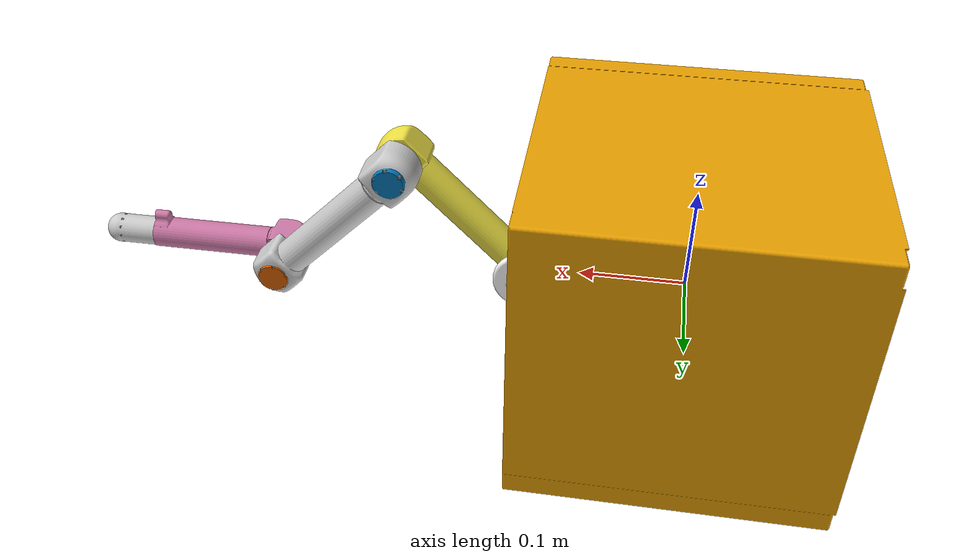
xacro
<?xml version="1.0"?>
<robot xmlns:xacro="http://ros.org/wiki/xacro" name="chaser">
	<xacro:include filename="$(find chaser_description)/urdf/chaser.urdf.base.xacro"/>
	<xacro:include filename="$(find chaser_description)/urdf/chaser.urdf.links.xacro"/>
	<xacro:include filename="$(find chaser_description)/urdf/chaser.urdf.joints.xacro"/>
	<xacro:include filename="$(find chaser_description)/urdf/chaser.urdf.camera.xacro"/>
	<xacro:include filename="$(find chaser_description)/urdf/chaser.gazebo.xacro"/>

	<xacro:arg name="standalone_c" default="true"/>
	<xacro:arg name="joystick_c" default="true"/>
	<xacro:arg name="simple_" default="false"/>

 <xacro:base_create/>
 <xacro:arm_create/>
 <xacro:joints_create/>
 <xacro:camera_urdf radius_xy="0.001"  length_z="0.0005" posx="0.13550" posy="-0.02" posz="-0.018" rotx="1.5707963267949" roty="0" rotz="0" parent="arm3"/> <!--- posx="0.13717" roty="-1.571"-->

 <link	name="base_footprint"/>
  <!-- Attach the model to Gazebo-->
  <joint name="base_joint" type="fixed">
		<!--parent link="base_footprint"/-->
		<parent link="base_footprint"/>
		<child link="base_link"/> <!--base_footprint: still mobile world: fixed -->
  </joint>
  <xacro:integration_gazebo joystick_g="$(arg joystick_c)" standalone_g="$(arg standalone_c)" simple="$(arg simple_)"/>

</robot>

<!--parent link="world"/-->

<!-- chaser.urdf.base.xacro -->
<robot xmlns:xacro="http://ros.org/wiki/xacro">
	<xacro:property name="mesh_path" value="chaser_description/models/robot1.0/meshes"/>
	<xacro:macro name="base_create">
	<xacro:property name="scale" value="1"/>
	  <link
		name="base_link">
		<inertial>
		  <origin
			xyz="0 0 0"
			rpy="0 0 0" />
		  <mass
			value="255" />
		  <inertia
			ixx="3.87199388339"
			ixy="0"
			ixz="7.527E-07"
			iyy="3.81565926076"
			iyz="0"
			izz="3.81565926004" /> <!--ixx="3.872" ixz="7.527E-07" -->
		</inertial>
		<visual>
		  <geometry>
			<mesh
			  filename="package://${mesh_path}/base.dae" scale="${scale} ${scale} ${scale}"/>
		  </geometry>
		</visual>
		<collision>
		  <geometry>
			<mesh
			  filename="package://${mesh_path}/base_col.STL" scale="${scale} ${scale} ${scale}"/>
		  </geometry>
		</collision>
	  </link>
	</xacro:macro>
</robot>

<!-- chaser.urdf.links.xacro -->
<robot xmlns:xacro="http://ros.org/wiki/xacro">
	<xacro:property name="mesh_path" value="chaser_description/models/robot1.0/meshes"/>
	<xacro:macro name="arm_create" >
	<xacro:property name="scale" value="1"/>
	  <link
		name="arm0">
		<inertial>
		  <origin
			xyz="-0.0 ${-0.0099455*scale} ${0.031502*scale}"
			rpy="0 0 0" />
		  <mass
			value="2.188" />
		  <inertia
			ixx="0.0020655263"
			ixy="-1.03600944159698E-18"
			ixz="7.98425222551929E-19"
			iyy="0.0015236909"
			iyz="-0.000330738"
			izz="-0.0" />
		</inertial>
		<visual>
		  <geometry>
			<mesh
			  filename="package://${mesh_path}/arm0.dae" scale="${scale} ${scale} ${scale}"/>
		  </geometry>
		</visual>
		<collision>
		  <geometry>
			<mesh
			  filename="package://${mesh_path}/arm0_col.STL"/>
		  </geometry>
		</collision>
	  </link>

	  <link
		name="arm1">
		<inertial>
		  <origin
			xyz="-0.0 -0.0 -0.0"
			rpy="0 0 0" />
		  <mass
			value="0.684" />
		  <inertia
			ixx="0.0001629973"
			ixy="1.76783063254965E-07"
			ixz="3.44463435626053E-20"
			iyy="0.000161804"
			iyz="1.78234800433147E-20"
			izz="0.0001942075" />
		</inertial>
		<visual>
		  <geometry>
			<mesh
			  filename="package://${mesh_path}/arm1.dae" />
		  </geometry>
		</visual>
		<collision>
		  <geometry>
			<mesh
			  filename="package://${mesh_path}/arm1_col.STL"  scale="${scale} ${scale} ${scale}"/>
		  </geometry>
		</collision>
	  </link>

	  	<link
		name="arm1_1">
		<inertial>
		  <origin
			xyz="0 0 ${0.0940740*scale}"
			rpy="0 0 0" />
		  <mass
			value="1.403" />
		  <inertia
			ixx="0.0035182671"
			ixy="1.48956570040176E-08"
			ixz="-1.62260783077023E-06"
			iyy="0.0035143154"
			iyz="3.12588982516402E-05"
			izz="0.0002606412" />
		</inertial>
		<visual>
		  <geometry>
			<mesh
			  filename="package://${mesh_path}/arm1_1.dae" scale="${scale} ${scale} ${scale}" />
		  </geometry>
		</visual>
		<collision>
		  <geometry>
			<mesh
			  filename="package://${mesh_path}/arm1_1_col.STL" scale="${scale} ${scale} ${scale}" />
		  </geometry>
		</collision>
	  </link>

	  <link
		name="arm2">
		<inertial>
		  <origin
			xyz="${0.00145198*scale} 0 ${0.0190117*scale}"
			rpy="0 0 0" />
		  <mass
			value="0.684" />
		  <inertia
			ixx="0.000166649"
			ixy="0.000000151"
			ixz="-1.00480707572084E-06"
			iyy="0.0001656077"
			iyz="-4.93074869865452E-08"
			izz="0.0001872872" />
		</inertial>
		<visual>
		  <geometry>
			<mesh
			  filename="package://${mesh_path}/arm2.dae" scale="${scale} ${scale} ${scale}"/>
		  </geometry>
		</visual>
		<collision>
		  <geometry>
			<mesh
			  filename="package://${mesh_path}/arm2_col.STL" scale="${scale} ${scale} ${scale}"/>
		  </geometry>
		</collision>
	  </link>
	  <link
		name="arm2_1">
		<inertial>
		  <origin
			xyz="0.0 ${-0.000474807*scale} ${0.0940740*scale}"
			rpy="0 0 0" />
		  <mass
			value="1.403" />
		  <inertia
			ixx="0.0035162283"
			ixy="1.63775393312065E-08"
			ixz="1.62260783073914E-06"
			iyy="0.0035143154"
			iyz="-3.43686643307904E-05"
			izz="0.0002586024" />
		</inertial>
		<visual>
		  <geometry>
			<mesh
			  filename="package://${mesh_path}/arm2_1.dae" scale="${scale} ${scale} ${scale}"/>
		  </geometry>
		</visual>
		<collision>
		  <geometry>
			<mesh
			  filename="package://${mesh_path}/arm2_1_col.STL" scale="${scale} ${scale} ${scale}"/>
		  </geometry>
		</collision>
	  </link>
	  <link
		name="arm3">
		<inertial>
		  <origin
			xyz="${0.0449361*scale} ${-0.000259019*scale} ${-0.0185460*scale}"
			rpy="0 0 0" />
		  <mass
			value="1.3470380057" />
		  <inertia
			ixx="0.0001927432"
			ixy="-2.89797715428797E-05"
			ixz="3.30477933144638E-05"
			iyy="0.002441563"
			iyz="-1.90493140925181E-07"
			izz="0.0024412314" />
		</inertial>
		<visual>
		  <geometry>
			<mesh
			  filename="package://${mesh_path}/arm3.dae" scale="${scale} ${scale} ${scale}"/>
		  </geometry>
		</visual>
		<collision>
		  <geometry>
			<mesh
			  filename="package://${mesh_path}/arm3_col.STL" scale="${scale} ${scale} ${scale}"/>
		  </geometry>
		</collision>
	  </link>
	  <link
		name="hand">
		<inertial>
		  <origin
			xyz="-0.0 -0.0 ${0.0265827*scale}"
			rpy="0.0 0.0 0.0" />
		  <mass
			value="0.283" />
		  <inertia
			ixx="0.000072121"
			ixy="0"
			ixz="0"
			iyy="0.000072121"
			iyz="0"
			izz="0.000031537" />
		</inertial>
		<visual>
		  <geometry>
			<mesh
			  filename="package://${mesh_path}/hand.dae" scale="${scale} ${scale} ${scale}"/>
		  </geometry>
		</visual>
		<collision name="hand"> <!--it is necessary to name the collision to be able to use the contact sensor-->
		  <geometry>
			<mesh
			  filename="package://${mesh_path}/hand_col.STL" scale="${scale} ${scale} ${scale}"/>
		  </geometry>
		</collision>
	  </link>

	</xacro:macro>
</robot>

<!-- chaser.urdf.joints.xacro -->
<robot xmlns:xacro="http://ros.org/wiki/xacro">
	<xacro:include filename="$(find chaser_description)/urdf/chaser.urdf.joints.transmission.xacro"/>
	<xacro:property name="damp" value="0.0"/>
	<xacro:property name="frict" value="0.0"/>
	<xacro:property name="calibration_edge" value="0.0"/>
	<xacro:property name="k_vel" value="0"/>
	<xacro:property name="k_pos" value="0"/>
	<xacro:property name="effort_t" value="10000000.0"/> <!--for the matter of test 1e7-->
	<xacro:property name="vel_t" value="1000.0"/> <!--scaling factor for maximum velocity - for testing purposes-->
	<xacro:property name="soft_limit_r" value="1"/>
	<xacro:property name="motor_reduction" value="1"/>
	<xacro:property name="scale" value="1"/>

	<!--for the matter of test 1e7-->
	<!--xacro:property name="vel_t" value="1000.0"/--> <!--scaling factor for maximum velocity - for testing purposes-->

	<!--xacro:property name="up_lim_j1" value="6.1087"/--> <!--3.2289 symmetric-->
	<!--xacro:property name="lw_lim_j2" value="-0.69341"/-->
	<!--xacro:property name="up_lim_j2" value="2.3642"/-->
	<!--symmetric and equal to j5 -->
	<!--value="-0.032"-->

	<xacro:property name="up_lim_j1" value="6.1087"/> <!--3.2289 symmetric-->
	<xacro:property name="lw_lim_j2" value="-6.1087"/>
	<xacro:property name="up_lim_j2" value="6.1087"/>
	<xacro:property name="lw_lim_j4" value="-6.1087"/>
	<xacro:property name="up_lim_j4" value="6.1087"/>
	<xacro:property name="up_lim_j3" value="6.1087"/> <!--symmetric and equal to j5 -->
	<xacro:property name="lw_lim_j6" value="-6.1087"/>
	<xacro:property name="up_lim_j6" value="6.1087"/>
	<xacro:property name="stroke_d1" value="-0.032"/> <!--value="-0.032"-->

	<!-- Definition of variables -->

	<xacro:property name="deg2rad" value="${pi/180}" />

	<xacro:macro name="joints_create">
	 <joint
		name="j1"
		type="revolute"> <!--revolute-->
		<origin
		  xyz="${0.103238*scale} -0.0 -0.0"
		  rpy="-0.0 ${90*deg2rad} -0.0" />
		<parent
		  link="base_link" />
		<child
		  link="arm0" />
		<axis
		  xyz="0 0 1" />
		<limit
		  lower="-${up_lim_j1}"
		  upper="${up_lim_j1}"
		  effort="10"
		  velocity="${2.4435*vel_t}" />
		<!--calibration
			rising = "${calibration_edge}"/-->
		<dynamics
			damping="${damp}"
			friction="${frict}"/>
		<safety_controller
			k_velocity="${k_vel}"
			k_position="${k_pos}"
			soft_lower_limit="-${soft_limit_r* up_lim_j1}"
			soft_upper_limit="${soft_limit_r* up_lim_j1}" />    <!--origin xyz="0.10324 0 0"  rpy="0 1.5708 0" /-->
	  </joint>
	  <xacro:joint_trans name="j1" reduction="${motor_reduction}"/>

	  <joint
		name="j2"
		type="revolute">
		<origin
		  xyz="0.0 0.0 ${0.046700*scale}"
		  rpy="${90*deg2rad} ${-45*deg2rad} ${-180*deg2rad}" />
		<parent
		  link="arm0" />
		<child
		  link="arm1" />
		<axis xyz="0 0 1" />
		<limit
		  lower="${lw_lim_j2}"
		  upper="${up_lim_j2}"
		  effort="${effort_t}"
		  velocity="${2.1991*vel_t}" />
		<!--calibration
			rising = "${calibration_edge}"/-->
		<dynamics
			damping="${damp}"
			friction="${frict}"/>
		<safety_controller
			k_velocity="${k_vel}"
			k_position="${k_pos}"
			soft_lower_limit="${soft_limit_r* lw_lim_j2}"
			soft_upper_limit="${soft_limit_r* up_lim_j2}" />
	  </joint>
	  <xacro:joint_trans name="j2" reduction="${motor_reduction}"/>

	   <joint
		name="j3"
		type="revolute">
		<origin
		  xyz="${0.021000*scale} -0.0 -0.0"
		  rpy="${90*deg2rad} -0.0 ${90*deg2rad}" />
		<parent
		  link="arm1" />
		<child
		  link="arm1_1" />
		<axis  xyz="0 0 1" />
		<limit
		  lower="-${up_lim_j3}"
		  upper="${up_lim_j3}"
		  effort="${effort_t}"
		  velocity="${4.5379*vel_t}"/> <!--symmetric-->
		<!--calibration
			rising = "${calibration_edge}"/-->
		<dynamics
			damping="${damp}"
			friction="${frict}"/>
		<safety_controller
			k_velocity="${k_vel}"
			k_position="${k_pos}"
			soft_lower_limit="-${soft_limit_r*up_lim_j3}"
			soft_upper_limit="${soft_limit_r*up_lim_j3}" />  <!--symmetric-->
	  </joint>
	  <xacro:joint_trans name="j3" reduction="${motor_reduction}"/>

	  <joint
		name="j4"
		type="revolute">
	   <origin
		  xyz="-0.0 ${0.021000*scale} ${0.145667*scale}"
		  rpy="${-90*deg2rad} -0.0 -0.0" />
		<parent
		  link="arm1_1" />
		<child
		  link="arm2" />
		<axis
		  xyz="0 0 1" />
		<limit
		  lower="${lw_lim_j4}"
		  upper="${up_lim_j4}"
		  effort="${effort_t}"
		  velocity="${2.1991*vel_t}" />
		<!--calibration
			rising = "${calibration_edge}"/-->
		<dynamics
			damping="${damp}"
			friction="${frict}"/>
		<safety_controller
			k_velocity="${k_vel}"
			k_position="${k_pos}"
			soft_lower_limit="${soft_limit_r* lw_lim_j4}"
			soft_upper_limit="${soft_limit_r* up_lim_j4}" />
	  </joint>
	  <xacro:joint_trans name="j4" reduction="${motor_reduction}"/>

	  <joint
		name="j5"
		type="revolute">
		<origin
		  xyz="${0.021000*scale} -0.0 ${0.018000*scale}"
		  rpy="${90*deg2rad} -0.0 ${90*deg2rad}" />
		<parent
		  link="arm2" />
		<child
		  link="arm2_1" />
		<axis
		  xyz="0 0 1" />
		<limit
		  lower="-${up_lim_j3}"
		  upper="${up_lim_j3}"
		  effort="${effort_t}"
		  velocity="${4.5379*vel_t}"/> <!--symmetric-->
		<!--calibration
			rising = "${calibration_edge}"/-->
		<dynamics
			damping="${damp}"
			friction="${frict}"/>
		<safety_controller
			k_velocity="${k_vel}"
			k_position="${k_pos}"
			soft_lower_limit="-${soft_limit_r*up_lim_j3}"
			soft_upper_limit="${soft_limit_r*up_lim_j3}" />  <!--symmetric-->
	  </joint>
	  <xacro:joint_trans name="j5" reduction="${motor_reduction}"/>

	  <joint
		name="j6"
		type="revolute">
		<origin
		  xyz="0 ${-0.021000*scale} ${0.145667*scale}"
		  rpy="${90*deg2rad} ${-45*deg2rad} ${-180*deg2rad}" />
		<parent
		  link="arm2_1" />
		<child
		  link="arm3" />
		<axis
		  xyz="0 0 1" />
		<limit
		  lower="${lw_lim_j6}"
		  upper="${up_lim_j6}"
		  effort="${effort_t}"
		  velocity="${4.2761*vel_t}" />
		<!--calibration
			rising = "${calibration_edge}"/-->
		<dynamics
			damping="${damp}"
			friction="${frict}"/>
		<safety_controller
			k_velocity="${k_vel}"
			k_position="${k_pos}"
			soft_lower_limit="${soft_limit_r* lw_lim_j6}"
			soft_upper_limit="${soft_limit_r* up_lim_j6}" />
	  </joint>
	  <xacro:joint_trans name="j6" reduction="${motor_reduction}"/>

	  <joint
		name="d1"
		type="prismatic">
		<origin
		  xyz="${0.137170*scale} -0.0 ${-0.018*scale}"
		  rpy="${90*deg2rad} -0.0 ${90*deg2rad}" /> <!-- xyz="0 0 0.12"   w.ft.sensor. "0 0 0.145"-->
		<parent
		  link="arm3" />
		<child
		  link="hand" />
		<axis
		  xyz="0 0 1" />
		<limit
		  lower="${stroke_d1}"
		  upper="0.00"
		  effort="${effort_t}"
		  velocity="${2.5*vel_t}" /><!--${stroke_d1}-->
		<!--dynamics are implemented implemented in a plugin-->
	  </joint>
	  <xacro:joint_trans name="d1" reduction="${motor_reduction}"/> <!--dummy effort joint interface-->

	</xacro:macro>
</robot>

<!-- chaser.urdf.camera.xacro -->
<robot xmlns:xacro="http://ros.org/wiki/xacro">

	<xacro:macro name="camera_urdf" params="radius_xy length_z posx posy posz rotx roty rotz parent">
		<joint name="camera_joint" type="fixed">
			<axis xyz="0 1 0" />
			<origin xyz="${posx} ${posy} ${posz}" rpy="${rotx} ${roty} ${rotz}"/>
			<parent link="${parent}"/>
			<child link="camera_link"/>
		</joint>

		<link name="camera_link">
			<collision name="camera_link_collision">
				<origin xyz="0 0 0" rpy="0 ${rotx} 0"/>
				<geometry>
					<cylinder radius="${radius_xy}" length="${length_z}"/>
				</geometry>
			</collision>
			<visual name="camera_link_visual">
				<origin xyz="0 0 0" rpy="0 ${rotx} 0"/>
				<geometry>
					<cylinder radius="${radius_xy}" length="${length_z}"/>
				</geometry>
			</visual>

			<inertial>
				<mass value="1e-5" />
				<origin xyz="0 0 0" rpy="0 0 0"/>
				<inertia
					ixx="1e-6"
					ixy="0"
					ixz="0"
					iyy="1e-6"
					iyz="0"
					izz="1e-6"/>
			</inertial>
		</link>
	</xacro:macro>
</robot>

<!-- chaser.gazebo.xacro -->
<robot xmlns:xacro="http://ros.org/wiki/xacro">

	<!--LOAD MACROS XACROS-->
	<xacro:include filename="$(find chaser_description)/urdf/chaser.gazebo.links.xacro"/>
	<xacro:include filename="$(find chaser_description)/urdf/chaser.gazebo.joints.xacro"/>
	<xacro:include filename="$(find chaser_description)/urdf/chaser.gazebo.thrusters.xacro"/>
	<xacro:include filename="$(find chaser_description)/urdf/chaser.gazebo.spd.xacro"/>
	<xacro:include filename="$(find chaser_description)/urdf/chaser.gazebo.sensors.contact.xacro"/>
	<xacro:include filename="$(find chaser_description)/urdf/chaser.gazebo.sensors.ft_sensor.xacro"/>
	<xacro:include filename="$(find chaser_description)/urdf/chaser.gazebo.sensors.p3d.xacro"/>
	<xacro:include filename="$(find chaser_description)/urdf/chaser.gazebo.sensors.f3d.xacro"/>
	<xacro:include filename="$(find chaser_description)/urdf/chaser.gazebo.sensors.imu.xacro"/>
	<xacro:include filename="$(find chaser_description)/urdf/chaser.gazebo.sensors.camera.xacro"/>
	<xacro:include filename="$(find chaser_description)/urdf/chaser.gazebo.jointsPID.xacro"/>

	<!--FRICTION AND CONTACT PARAMETERS FOR ARMS-->
	<xacro:property name="MU1" value="0.112"/>
	<xacro:property name="MU2" value="0.112"/>
	<xacro:property name="KP_CONT" value="1000000"/> <!-- default value in Gazebo -->
	<xacro:property name="KD_CONT" value="1"/>

	<!--SENSORS PARAMETERS-->
	<xacro:property name="contact_upd_rate" value="0"/>
	<xacro:property name="force_torque_upd_rate" value="30"/> <!-- 0: maximum frequency -->
	<xacro:property name="p3d_upd_rate" value="30"/>
	<xacro:property name="imu_upd_rate" value="30"/>
	<xacro:property name="f3d_upd_rate" value="30"/>

	<!--MAIN GAZEBO XACRO MACRO-->
	<xacro:macro name="integration_gazebo" params=" joystick_g simple standalone_g  ">

		<!--ROS CONTROL PLUGIN-->
		<gazebo>
			<plugin name="gazebo_ros_control" filename="libgazebo_ros_control.so">
				<robotNamespace>/chaser</robotNamespace>
				<robotSimType>gazebo_ros_control/DefaultRobotHWSim</robotSimType>
			</plugin>
		</gazebo>

		<!-- ATTITUDE CONTROL + VELOCITY COMMAND PLUGIN-->
		<xacro:if value="${joystick_g!='false'}">
			<xacro:thrusters_3D/>
		</xacro:if>

		<!--GAZEBO PHYSICS IN LINKS-->
		<xacro:gazebo_links name="base_link" mu1="${MU1}" mu2="${MU2}" kp_cont="${KP_CONT}" kd_cont="${KD_CONT}"/>
		<xacro:gazebo_links name="arm0" mu1="${MU1}" mu2="${MU2}" kp_cont="${KP_CONT}" kd_cont="${KD_CONT}"/>
		<xacro:gazebo_links name="arm1_1" mu1="${MU1}" mu2="${MU2}" kp_cont="${KP_CONT}" kd_cont="${KD_CONT}"/>
		<xacro:gazebo_links name="arm1" mu1="${MU1}" mu2="${MU2}" kp_cont="${KP_CONT}" kd_cont="${KD_CONT}"/>
		<xacro:gazebo_links name="arm2" mu1="${MU1}" mu2="${MU2}" kp_cont="${KP_CONT}" kd_cont="${KD_CONT}"/>
		<xacro:gazebo_links name="arm2_1" mu1="${MU1}" mu2="${MU2}" kp_cont="${KP_CONT}" kd_cont="${KD_CONT}"/>
		<xacro:gazebo_links name="arm3" mu1="${MU1}" mu2="${MU2}" kp_cont="${KP_CONT}" kd_cont="${KD_CONT}"/>
		<xacro:gazebo_links name="hand" mu1="${MU1}" mu2="${MU2}" kp_cont="${KP_CONT}" kd_cont="${KD_CONT}"/>
		<!--GAZEBO PHYSICS IN JOINTS-->

		<xacro:gazebo_joints name="j1"/>
		<xacro:gazebo_joints name="j2"/>
		<xacro:gazebo_joints name="j3"/>
		<xacro:gazebo_joints name="j4"/>
		<xacro:gazebo_joints name="j5"/>
		<xacro:gazebo_joints name="j6"/>
		<xacro:gazebo_joints name="d1"/>

		<!--PLUGIN FOR COMPLIANT WRIST (SPRING) -->
		<gazebo>
			<plugin name="compliant_wrist" filename="libcompliant_wrist.so">
				<stiffnessW>900</stiffnessW>
				<dampingW>6</dampingW>
				<referenceW>0.0</referenceW>
				<Axis>9</Axis>
			</plugin>
		</gazebo>

			<!--GAZEBO  SPACE DYN INTERFACE-->
		<!--xacro:spacedyn_chaser standalone_spd="${standalone_g}" /-->

		<!--CONTACT SENSOR PLUGIN-->
		<!--xacro:contact_sensor name="hand" update_rate="${contact_upd_rate}"/-->

		<!-- POSE 3D GROUND TRUTH BASE LINK PLUGIN-->
			<xacro:p3d_gazebo update_rate="${p3d_upd_rate}"/>

		<xacro:if value="${simple!='true'}"> <!-- simple_g is a group of arguments called simple that mean that the robot will be launched without too many sensors-->
			<!-- FORCE 3D GROUND TRUTH BASE_LINK PLUGIN-->
			<xacro:f3d_gazebo update_rate="${f3d_upd_rate}"/>

			<!-- IMU PLUGIN-->
			<!--xacro:imu_gazebo update_rate="${imu_upd_rate}"/-->

			<!-- BUILT-IN CAMERA PLUGIN-->
			<!--xacro:camera_gazebo upd_rate="30" im_width="300" im_height="300"/-->  <!--im_width="800" im_height="800" -->

			<!--FORCE TORQUE FOR JOINT SENSOR PLUGIN-->
			<!--will always be zero, because of the spring-->

		</xacro:if>

		<xacro:jointsPID/>

	</xacro:macro>

</robot>
